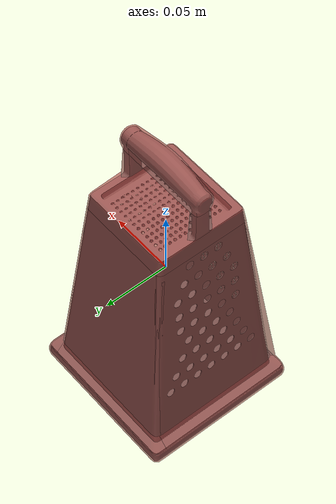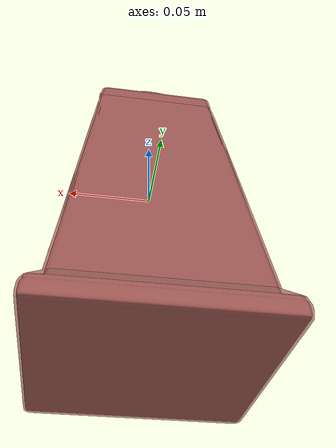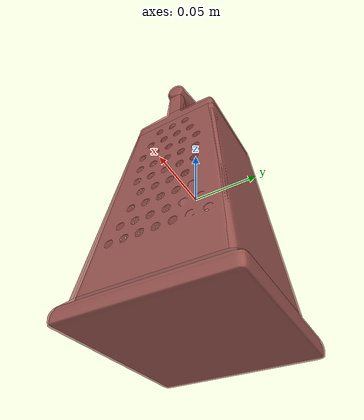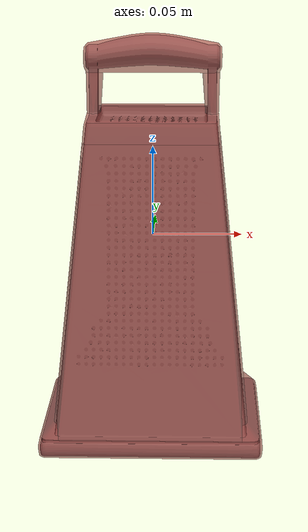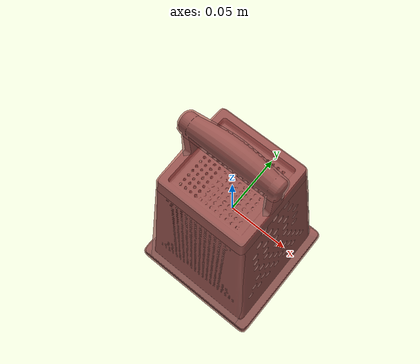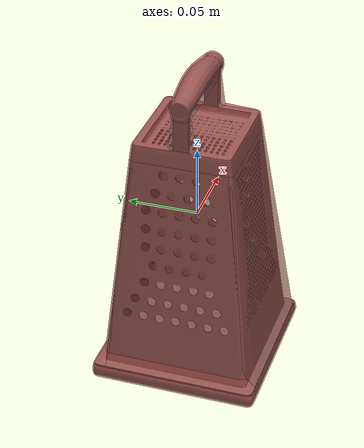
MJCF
<mujoco model="model">
  <option timestep="0.002" gravity="0.0 0.0 -9.81"/>
  <compiler angle="radian"/>
  <asset>
    <mesh file="visual/CheeseGrater006.obj" name="CheeseGrater006_vis"/>
    <texture file="visual/T_BC001.png" name="CheeseGrater006_material" type="2d"/>
    <material name="CheeseGrater006_material" rgba="1 1 1 1.0" texture="CheeseGrater006_material" shininess="0.5" specular="0.3103448502657381"/>
    <mesh file="collision/collision_mesh_collision_0.obj" name="CheeseGrater006_collision_mesh_0"/>
    <mesh file="collision/collision_mesh_collision_1.obj" name="CheeseGrater006_collision_mesh_1"/>
    <mesh file="collision/collision_mesh_collision_2.obj" name="CheeseGrater006_collision_mesh_2"/>
    <mesh file="collision/collision_mesh_collision_3.obj" name="CheeseGrater006_collision_mesh_3"/>
    <mesh file="collision/collision_mesh_collision_4.obj" name="CheeseGrater006_collision_mesh_4"/>
    <mesh file="collision/collision_mesh_collision_5.obj" name="CheeseGrater006_collision_mesh_5"/>
    <mesh file="collision/collision_mesh_collision_6.obj" name="CheeseGrater006_collision_mesh_6"/>
    <mesh file="collision/collision_mesh_collision_7.obj" name="CheeseGrater006_collision_mesh_7"/>
    <mesh file="collision/collision_mesh_collision_8.obj" name="CheeseGrater006_collision_mesh_8"/>
    <mesh file="collision/collision_mesh_collision_9.obj" name="CheeseGrater006_collision_mesh_9"/>
    <mesh file="collision/collision_mesh_collision_10.obj" name="CheeseGrater006_collision_mesh_10"/>
    <mesh file="collision/collision_mesh_collision_11.obj" name="CheeseGrater006_collision_mesh_11"/>
  </asset>
  <default>
    <default class="visual">
      <geom conaffinity="0" contype="0" group="1" type="mesh"/>
    </default>
    <default class="collision">
      <geom group="0" rgba="0.5 0 0 0.5" density="1.0" solref="0.004 1" solimp="0.998 0.998 0.001"/>
    </default>
    <default class="spawn">
      <geom group="0" rgba="1 1 1 0.5" contype="0" conaffinity="0"/>
      <site group="0" rgba="1 1 1 0.5"/>
    </default>
    <default class="region">
      <geom group="1" conaffinity="0" contype="0" rgba="0 1 0 0" mass="0"/>
    </default>
  </default>
  <worldbody>
    <body>
      <body name="object">
        <geom mesh="CheeseGrater006_vis" type="mesh" solimp="0.998 0.998 0.001" solref="0.001 1" friction="0.95 0.3 0.1" class="visual" material="CheeseGrater006_material"/>
        <geom class="region" name="reg_bbox" type="box" pos="0.0 -3.8649999999987306e-06 -0.0001062949999999993" size="0.06164978 0.060267925 0.11363019499999999"/>
        <geom mesh="CheeseGrater006_collision_mesh_0" type="mesh" class="collision"/>
        <geom mesh="CheeseGrater006_collision_mesh_1" type="mesh" class="collision"/>
        <geom mesh="CheeseGrater006_collision_mesh_2" type="mesh" class="collision"/>
        <geom mesh="CheeseGrater006_collision_mesh_3" type="mesh" class="collision"/>
        <geom mesh="CheeseGrater006_collision_mesh_4" type="mesh" class="collision"/>
        <geom mesh="CheeseGrater006_collision_mesh_5" type="mesh" class="collision"/>
        <geom mesh="CheeseGrater006_collision_mesh_6" type="mesh" class="collision"/>
        <geom mesh="CheeseGrater006_collision_mesh_7" type="mesh" class="collision"/>
        <geom mesh="CheeseGrater006_collision_mesh_8" type="mesh" class="collision"/>
        <geom mesh="CheeseGrater006_collision_mesh_9" type="mesh" class="collision"/>
        <geom mesh="CheeseGrater006_collision_mesh_10" type="mesh" class="collision"/>
        <geom mesh="CheeseGrater006_collision_mesh_11" type="mesh" class="collision"/>
      </body>
    </body>
  </worldbody>
  <actuator/>
</mujoco>
